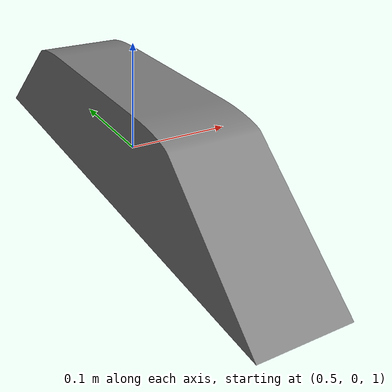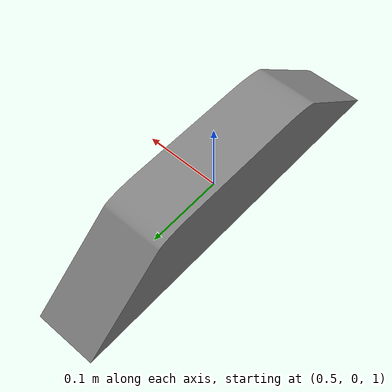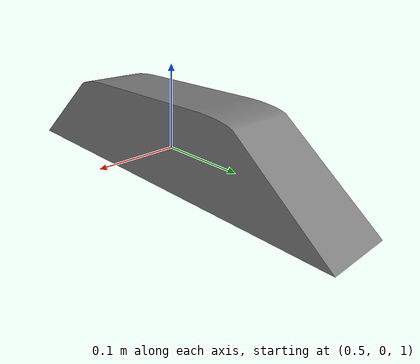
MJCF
<mujoco model="monitor_stand">
  <asset>
    <mesh file="../meshes/monitor_stand.stl" name="stand_mesh" scale="0.2 0.6 0.5"/>
  </asset>
  <worldbody>
    <body>
      <body name="object">
        <geom pos="0.5 0 .97" mesh="stand_mesh" type="mesh" solimp="0.998 0.998 0.001" solref="0.001 1" density="50" friction="0.95 0.3 0.1"  group="0" condim="4"/>
      </body>
      <site rgba="0 0 0 0" size="0.005" pos="0 0 -0.045" name="bottom_site"/>
      <site rgba="0 0 0 0" size="0.005" pos="0 0 0.03" name="top_site"/>
      <site rgba="0 0 0 0" size="0.005" pos="0.03 0.03 0" name="horizontal_radius_site"/>
    </body>
  </worldbody>
</mujoco>
